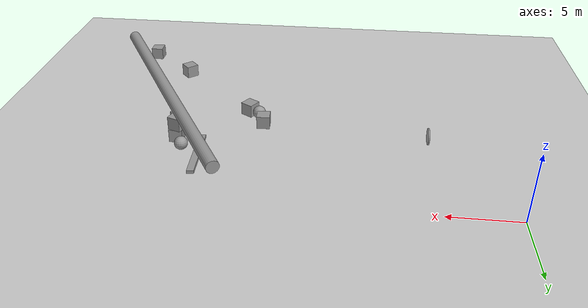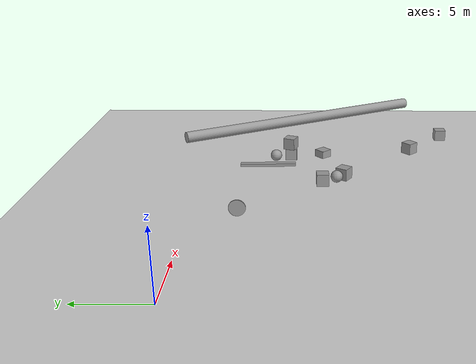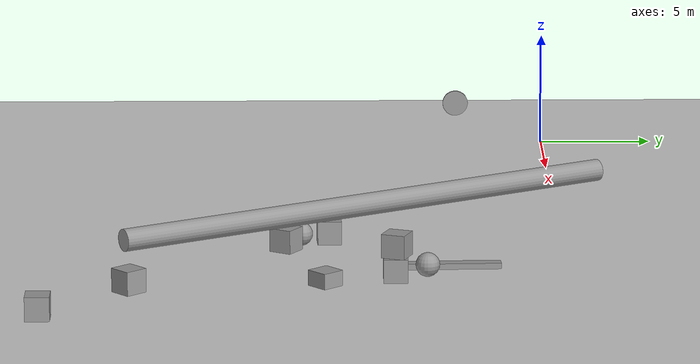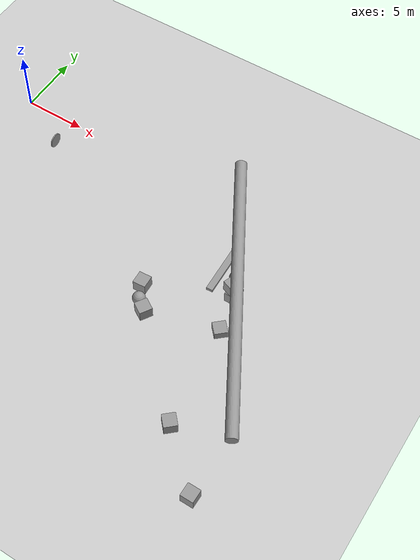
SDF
<sdf version="1.6">
 <world name="default">
  <model name="ground_plane">
   <static>1</static>
   <link name="link">
    <collision name="collision">
     <geometry><plane><normal>0 0 1</normal><size>100 100</size></plane></geometry>
     <surface><friction><ode><mu>100</mu><mu2>50</mu2></ode></friction></surface>
    </collision>
    <visual name="visual">
     <cast_shadows>0</cast_shadows>
     <geometry><plane><normal>0 0 1</normal><size>100 100</size></plane></geometry>
    </visual>
   </link>
  </model>
  <model name="unit_cylinder">
   <pose>6.04987 -4.15838 3.27214 1.53949 -1.2132 -1.50962</pose>
   <link name="unit_cylinder::unit_cylinder::link">
    <inertial>
     <mass>1</mass>
     <inertia><ixx>0.145833</ixx><ixy>0</ixy><ixz>0</ixz><iyy>0.145833</iyy><iyz>0</iyz><izz>0.125</izz></inertia>
    </inertial>
    <collision name="collision">
     <geometry><cylinder><radius>0.556751</radius><length>0.0900113</length></cylinder></geometry>
    </collision>
    <visual name="visual">
     <geometry><cylinder><radius>0.556751</radius><length>0.0900113</length></cylinder></geometry>
     <material>
      <script><name>Gazebo/Grey</name><uri>file://media/materials/scripts/gazebo.material</uri></script>
     </material>
    </visual>
   </link>
  </model>
  <model name="unit_cylinder_clone_clone_clone">
   <pose>24.7545 -8.36393 3.45202 -1.69264 -1.54833 -2.50606</pose>
   <link name="unit_cylinder_clone_clone_clone::unit_cylinder_clone_clone_clone::unit_cylinder_clone_clone::unit_cylinder_clone::unit_cylinder::link">
    <inertial>
     <mass>1</mass>
     <inertia><ixx>0.145833</ixx><ixy>0</ixy><ixz>0</ixz><iyy>0.145833</iyy><iyz>0</iyz><izz>0.125</izz></inertia>
    </inertial>
    <collision name="collision">
     <geometry><cylinder><radius>0.449034</radius><length>22.2419</length></cylinder></geometry>
    </collision>
    <visual name="visual">
     <geometry><cylinder><radius>0.449034</radius><length>22.2419</length></cylinder></geometry>
     <material>
      <script><name>Gazebo/Grey</name><uri>file://media/materials/scripts/gazebo.material</uri></script>
     </material>
    </visual>
   </link>
  </model>
  <model name="unit_box_8">
   <pose>24.5149 -10.0718 0.121188 -1e-06 -0 -0.835082</pose>
   <link name="link">
    <inertial>
     <mass>1</mass>
     <inertia>
      <ixx>0.166667</ixx>
      <ixy>0</ixy>
      <ixz>0</ixz>
      <iyy>0.166667</iyy>
      <iyz>0</iyz>
      <izz>0.166667</izz>
     </inertia>
    </inertial>
    <collision name="collision"><geometry><box><size>1 0.999998 0.999996</size></box></geometry></collision>
    <visual name="visual">
     <geometry><box><size>1 0.999998 0.999996</size></box></geometry>
     <material>
      <script><name>Gazebo/Grey</name><uri>file://media/materials/scripts/gazebo.material</uri></script>
     </material>
    </visual>
   </link>
  </model>
  <model name="unit_box_8_clone">
   <pose>21.9993 -5.18874 0.118653 -4e-06 -0.001058 -1.53608</pose>
   <link name="link">
    <inertial>
     <mass>1</mass>
     <inertia>
      <ixx>0.166667</ixx>
      <ixy>0</ixy>
      <ixz>0</ixz>
      <iyy>0.166667</iyy>
      <iyz>0</iyz>
      <izz>0.166667</izz>
     </inertia>
    </inertial>
    <collision name="collision"><geometry><box><size>4.79587 0.517599 0.242375</size></box></geometry></collision>
    <visual name="visual">
     <geometry><box><size>4.79587 0.517599 0.242375</size></box></geometry>
     <material>
      <script><name>Gazebo/Grey</name><uri>file://media/materials/scripts/gazebo.material</uri></script>
     </material>
    </visual>
   </link>
  </model>
  <model name="unit_box_9">
   <pose>23.9178 -7.19282 0.496315 -0.000773 -0.001808 -0.000508</pose>
   <link name="link">
    <inertial>
     <mass>1</mass>
     <inertia>
      <ixx>0.166667</ixx>
      <ixy>0</ixy>
      <ixz>0</ixz>
      <iyy>0.166667</iyy>
      <iyz>0</iyz>
      <izz>0.166667</izz>
     </inertia>
    </inertial>
    <collision name="collision"><geometry><box><size>1 1 1</size></box></geometry></collision>
    <visual name="visual">
     <geometry><box><size>1 1 1</size></box></geometry>
     <material>
      <script><name>Gazebo/Grey</name><uri>file://media/materials/scripts/gazebo.material</uri></script>
     </material>
    </visual>
   </link>
  </model>
  <model name="unit_box_10">
   <pose>23.8077 -7.14716 1.49605 -6.8e-05 -0.001979 -0.3702</pose>
   <link name="link">
    <inertial>
     <mass>1</mass>
     <inertia>
      <ixx>0.166667</ixx>
      <ixy>0</ixy>
      <ixz>0</ixz>
      <iyy>0.166667</iyy>
      <iyz>0</iyz>
      <izz>0.166667</izz>
     </inertia>
    </inertial>
    <collision name="collision"><geometry><box><size>1 1 1</size></box></geometry></collision>
    <visual name="visual">
     <geometry><box><size>1 1 1</size></box></geometry>
     <material>
      <script><name>Gazebo/Grey</name><uri>file://media/materials/scripts/gazebo.material</uri></script>
     </material>
    </visual>
   </link>
  </model>
  <model name="unit_sphere">
   <pose>23.2846 -5.86201 0.5 0 -0 0</pose>
   <link name="link">
    <inertial>
     <mass>1</mass>
     <inertia><ixx>0.1</ixx><ixy>0</ixy><ixz>0</ixz><iyy>0.1</iyy><iyz>0</iyz><izz>0.1</izz></inertia>
    </inertial>
    <collision name="collision"><geometry><sphere><radius>0.5</radius></sphere></geometry></collision>
    <visual name="visual">
     <geometry><sphere><radius>0.5</radius></sphere></geometry>
     <material>
      <script><name>Gazebo/Grey</name><uri>file://media/materials/scripts/gazebo.material</uri></script>
     </material>
    </visual>
   </link>
  </model>
  <model name="unit_box_11">
   <pose>17.7856 -9.87789 0.5 0 -0 0.051726</pose>
   <link name="link">
    <inertial>
     <mass>1</mass>
     <inertia>
      <ixx>0.166667</ixx>
      <ixy>0</ixy>
      <ixz>0</ixz>
      <iyy>0.166667</iyy>
      <iyz>0</iyz>
      <izz>0.166667</izz>
     </inertia>
    </inertial>
    <collision name="collision"><geometry><box><size>1 0.999998 1</size></box></geometry></collision>
    <visual name="visual">
     <geometry><box><size>1 0.999998 1</size></box></geometry>
     <material>
      <script><name>Gazebo/Grey</name><uri>file://media/materials/scripts/gazebo.material</uri></script>
     </material>
    </visual>
   </link>
  </model>
  <model name="unit_box_12">
   <pose>19.0925 -11.6866 0.5 0 -0 1.01074</pose>
   <link name="link">
    <inertial>
     <mass>1</mass>
     <inertia>
      <ixx>0.166667</ixx>
      <ixy>0</ixy>
      <ixz>0</ixz>
      <iyy>0.166667</iyy>
      <iyz>0</iyz>
      <izz>0.166667</izz>
     </inertia>
    </inertial>
    <collision name="collision"><geometry><box><size>1 1 1</size></box></geometry></collision>
    <visual name="visual">
     <geometry><box><size>1 1 1</size></box></geometry>
     <material>
      <script><name>Gazebo/Grey</name><uri>file://media/materials/scripts/gazebo.material</uri></script>
     </material>
    </visual>
   </link>
  </model>
  <model name="unit_sphere_0">
   <pose>18.2775 -11.0625 0.5 -0.022626 0.008982 -0.004439</pose>
   <link name="link">
    <inertial>
     <mass>1</mass>
     <inertia><ixx>0.1</ixx><ixy>0</ixy><ixz>0</ixz><iyy>0.1</iyy><iyz>0</iyz><izz>0.1</izz></inertia>
    </inertial>
    <collision name="collision"><geometry><sphere><radius>0.5</radius></sphere></geometry></collision>
    <visual name="visual">
     <geometry><sphere><radius>0.5</radius></sphere></geometry>
     <material>
      <script><name>Gazebo/Grey</name><uri>file://media/materials/scripts/gazebo.material</uri></script>
     </material>
    </visual>
   </link>
  </model>
  <model name="unit_box_19">
   <pose>29.3564 -21.533 0.5 -1e-06 1e-06 0.000354</pose>
   <link name="link">
    <inertial>
     <mass>1</mass>
     <inertia>
      <ixx>0.166667</ixx>
      <ixy>0</ixy>
      <ixz>0</ixz>
      <iyy>0.166667</iyy>
      <iyz>0</iyz>
      <izz>0.166667</izz>
     </inertia>
    </inertial>
    <collision name="collision"><geometry><box><size>1 1 1</size></box></geometry></collision>
    <visual name="visual">
     <geometry><box><size>1 1 1</size></box></geometry>
     <material>
      <script><name>Gazebo/Grey</name><uri>file://media/materials/scripts/gazebo.material</uri></script>
     </material>
    </visual>
   </link>
  </model>
  <model name="unit_box_8_clone_1">
   <pose>25.4849 -18.0487 0.499998 0 -0 -0.835213</pose>
   <link name="link">
    <inertial>
     <mass>1</mass>
     <inertia>
      <ixx>0.166667</ixx>
      <ixy>0</ixy>
      <ixz>0</ixz>
      <iyy>0.166667</iyy>
      <iyz>0</iyz>
      <izz>0.166667</izz>
     </inertia>
    </inertial>
    <collision name="collision"><geometry><box><size>1 0.999998 0.999997</size></box></geometry></collision>
    <visual name="visual">
     <geometry><box><size>1 0.999998 0.999997</size></box></geometry>
     <material>
      <script><name>Gazebo/Grey</name><uri>file://media/materials/scripts/gazebo.material</uri></script>
     </material>
    </visual>
   </link>
  </model>
 </world>
</sdf>
